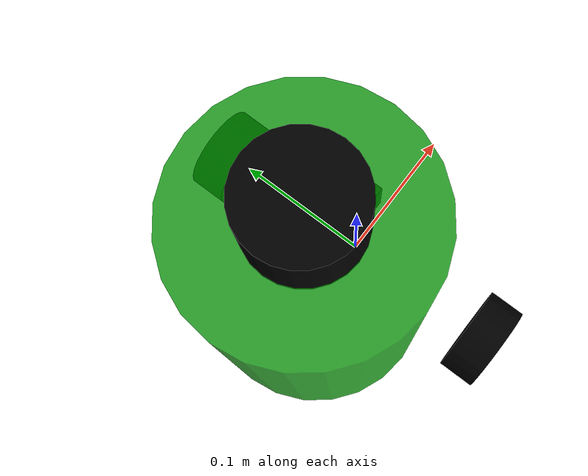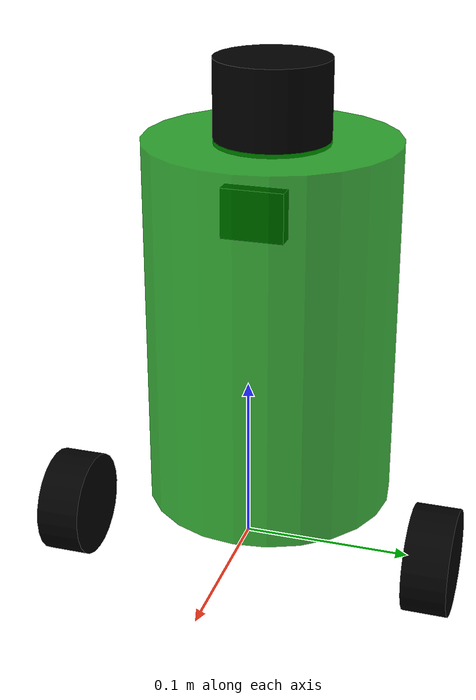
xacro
<?xml version="1.0" ?>
<robot xmlns:xacro="http://ros.org/wiki/xacro" name="edutracker">

  <!-- ====== ПАРАМЕТРЫ ====== -->

  <xacro:property name="body_radius" value="0.0775" />
  <xacro:property name="body_height" value="0.230" />

  <xacro:property name="wheel_radius" value="0.0325" />
  <xacro:property name="wheel_width" value="0.027" />

  <material name="green">
    <color rgba="0 0.6 0 0.8" />
  </material>

  <material name="black">
    <color rgba="0 0 0 1" />
  </material>

  <!-- ====== BASE ====== -->

  <link name="base_link" />

  <link name="body_link">
      <visual>
        <geometry>
          <cylinder radius="${body_radius}" length="${body_height}" />
        </geometry>

        <origin xyz="-0.047 0 0.1225" />
        <material name="green" />

      </visual>
  </link>

  <joint name="body_joint" type="fixed">
    <parent link="base_link" />
    <child link="body_link" />
    <origin xyz="0 0 0" />
  </joint>

  <!-- ====== LIDAR ====== -->

  <link name="laser_link">

    <visual>
      <geometry>
        <cylinder radius="0.035" length="0.05" />
      </geometry>

      <origin xyz="0 0 0" />
      <material name="black" />
    </visual>

  </link>

  <joint name="laser_joint" type="fixed">

    <parent link="base_link" />
    <child link="laser_link" />

    <!-- 25 см выше базы -->
    <origin xyz="-0.047 0 0.260" />

  </joint>

  <!-- ====== CAMERA ====== -->

  <link name="camera_link">

    <visual>
      <geometry>
        <box size="0.01 0.038 0.03" />
      </geometry>
      <material name="black" />
    </visual>

  </link>

  <joint name="camera_joint" type="fixed">

    <parent link="base_link" />
    <child link="camera_link" />

    <!-- камера чуть сбоку и выше -->
    <origin xyz="-0.01 0 0.203" />

  </joint>

  <!-- ====== КОЛЁСА ====== -->

  <link name="left_wheel_link">

    <visual>
      <geometry>
        <cylinder radius="${wheel_radius}" length="${wheel_width}" />
      </geometry>

      <origin rpy="1.5708 0 0" />
      <material name="black" />
    </visual>

  </link>

  <joint name="left_wheel_joint" type="continuous">

    <parent link="base_link" />
    <child link="left_wheel_link" />

    <origin xyz="0 0.1155 0" />

    <axis xyz="0 1 0" />

  </joint>

  <link name="right_wheel_link">

    <visual>
      <geometry>
        <cylinder radius="${wheel_radius}" length="${wheel_width}" />
      </geometry>

      <origin rpy="-1.5708 0 0" />
      <material name="black" />

    </visual>

  </link>

  <joint name="right_wheel_joint" type="continuous">

    <parent link="base_link" />
    <child link="right_wheel_link" />

    <origin xyz="0 -0.1155 0" />

    <axis xyz="0 1 0" />

  </joint>

</robot>
